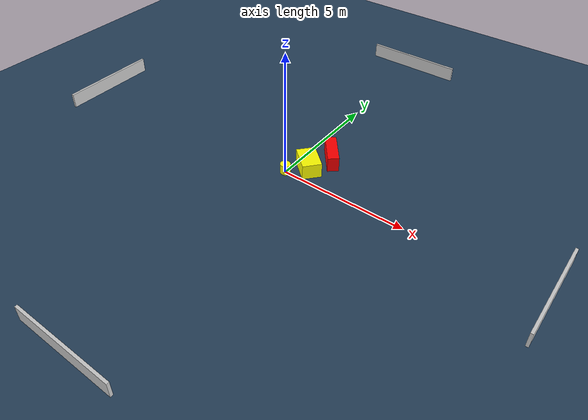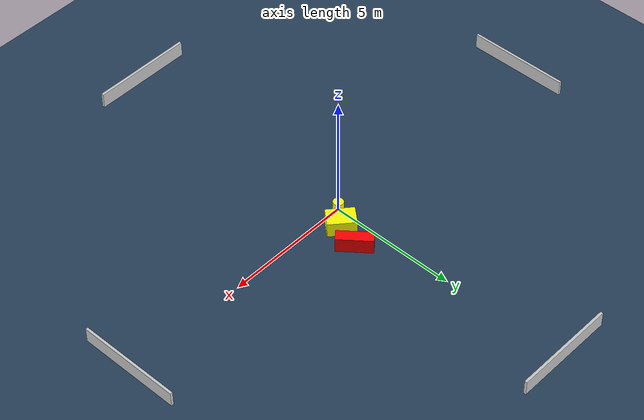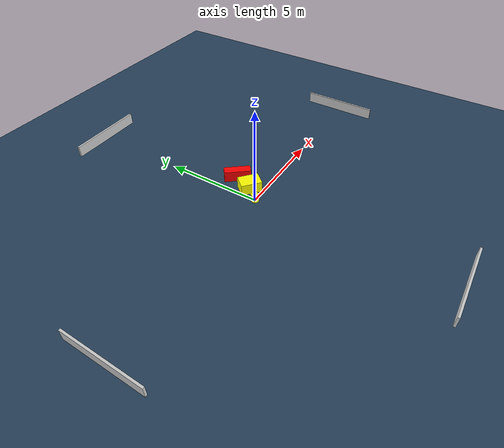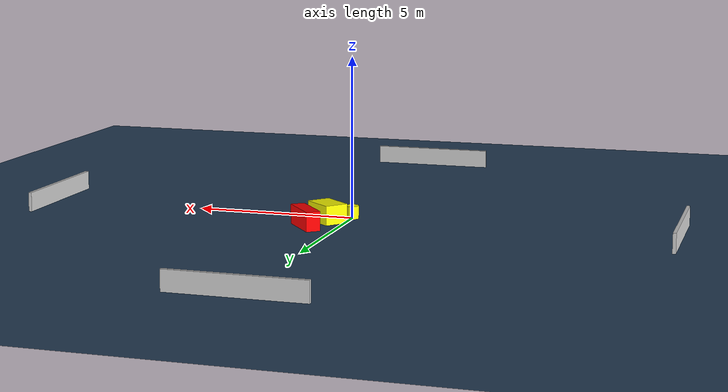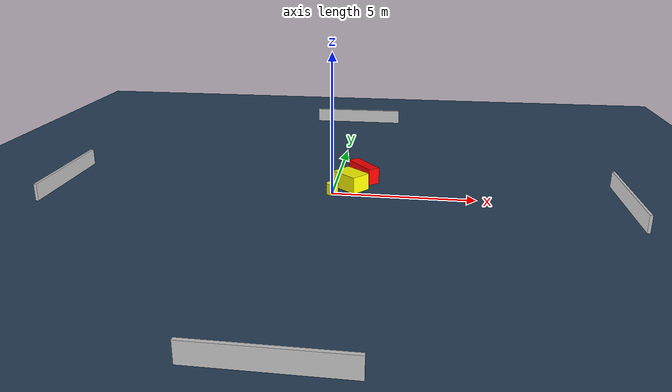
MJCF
<?xml version="1.0" ?>
<mujoco model="generated_environment">
  <option timestep="0.01" integrator="RK4" cone="elliptic"/>
  <default>
    <geom density="1"/>
  </default>
  <asset>
    <texture builtin="gradient" height="3072" name="skybox" rgb1="0.3 0.5 0.7" rgb2="0 0 0" type="skybox" width="512"/>
    <texture builtin="checker" height="300" name="groundplane" rgb1="0.2 0.3 0.4" rgb2="0.1 0.2 0.3" type="2d" width="300"/>
    <material name="groundplane" reflectance="0.2" texrepeat="5 5" texture="groundplane"/>
  </asset>
  <worldbody>
    <light dir="0 0 -1" directional="true" pos="0 0 1.5"/>
    <geom condim="3" friction="0.5 0.005 0.001" material="groundplane" name="floor" pos="0 0 0" size="0 0 0.05" type="plane"/>
    <body name="walls">
      <geom name="wall_1" condim="4" pos="-10.0 0.0 0.3" rgba="0.800000011920929 0.800000011920929 0.800000011920929 1.0" size="0.05 2.0 0.3" type="box"/>
      <geom name="wall_2" condim="4" pos="10.0 0.0 0.3" rgba="0.800000011920929 0.800000011920929 0.800000011920929 1.0" size="0.05 2.0 0.3" type="box"/>
      <geom name="wall_3" condim="4" pos="0.0 -10.0 0.3" rgba="0.800000011920929 0.800000011920929 0.800000011920929 1.0" size="2.0 0.05 0.3" type="box"/>
      <geom name="wall_4" condim="4" pos="0.0 10.0 0.3" rgba="0.800000011920929 0.800000011920929 0.800000011920929 1.0" size="2.0 0.05 0.3" type="box"/>
    </body>
    <body name="robot">
      <joint name="joint_x" type="slide" pos="0 0 0" axis="1 0 0"/>
      <joint name="joint_y" type="slide" pos="0 0 0" axis="0 1 0"/>
      <geom name="robot" type="cylinder" pos="0.0 0.0 0.2" size="0.2 0.2 0.0" mass="5.0" friction="1.0 0.005 0.0001" condim="4" rgba="1.0 1.0 0.0 1.0"/>
    </body>
    <body name="obstacle_1_movable">
      <geom name="obstacle_1_movable" condim="4" pos="0.5918291793297707 0.6724421771898644 0.3" euler="0 0 319.20342244779954" friction="0.0 0.005 0.001" rgba="1.0 1.0 0.0 1.0" size="0.536052222255116 0.3717731241511977 0.3" type="box" mass="0.1"/>
      <joint type="free"/>
    </body>
    <body name="obstacle_2_static">
      <geom name="obstacle_2_static" condim="4" pos="0.9680083238406191 1.6584773057624644 0.3" euler="0 0 308.85176100708765" friction="0.0 0.005 0.001" rgba="1.0 0.0 0.0 1.0" size="0.680349726152371 0.21913184103564476 0.3" type="box"/>
    </body>
  </worldbody>
  <actuator>
    <motor name="actuator_x" joint="joint_x" gear="1" ctrlrange="-1 1"/>
    <motor name="actuator_y" joint="joint_y" gear="1" ctrlrange="-1 1"/>
  </actuator>
</mujoco>
